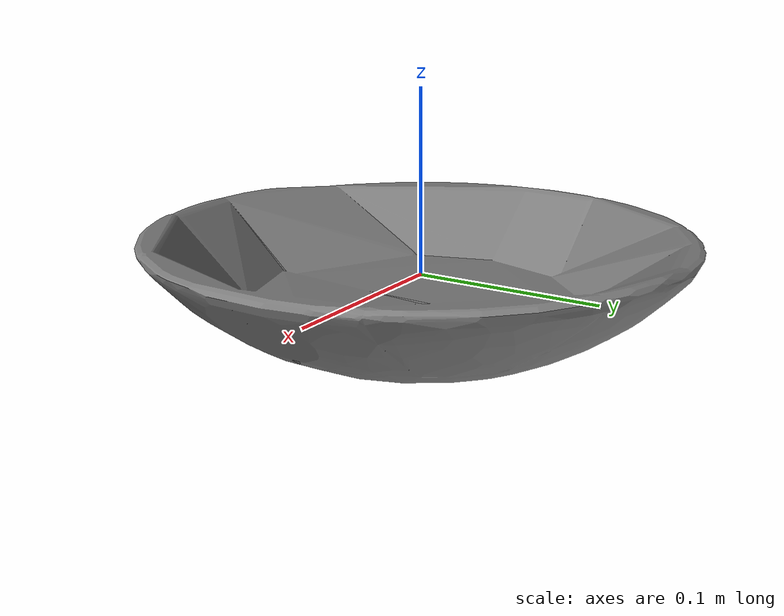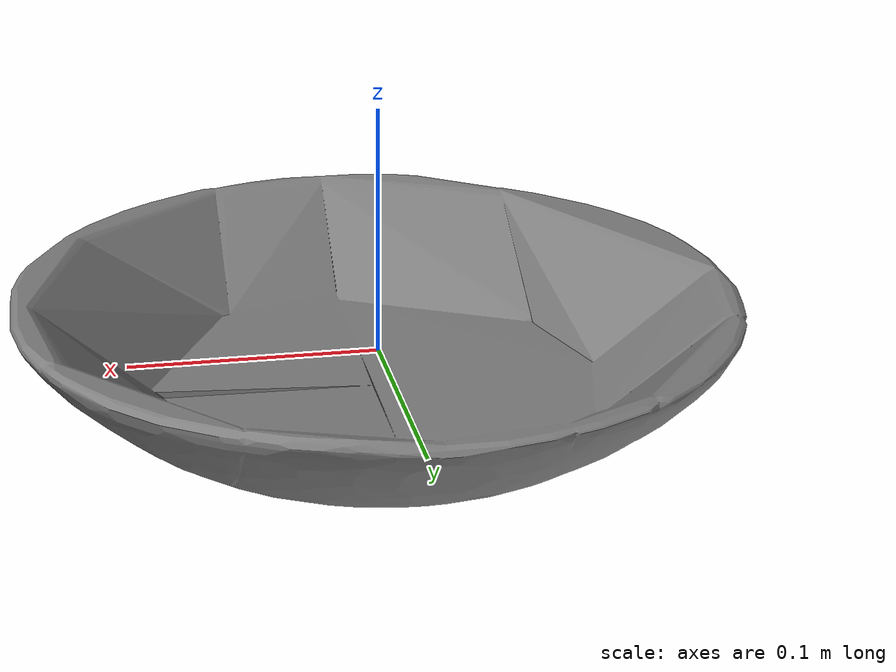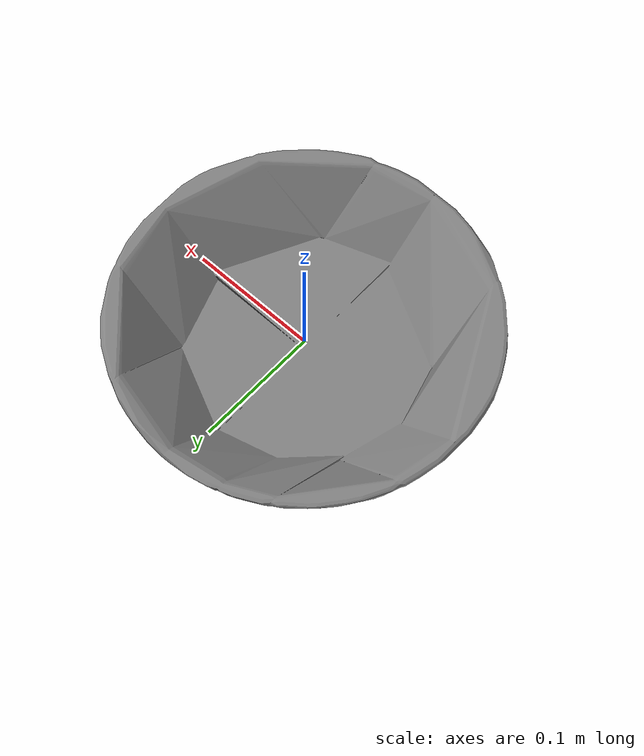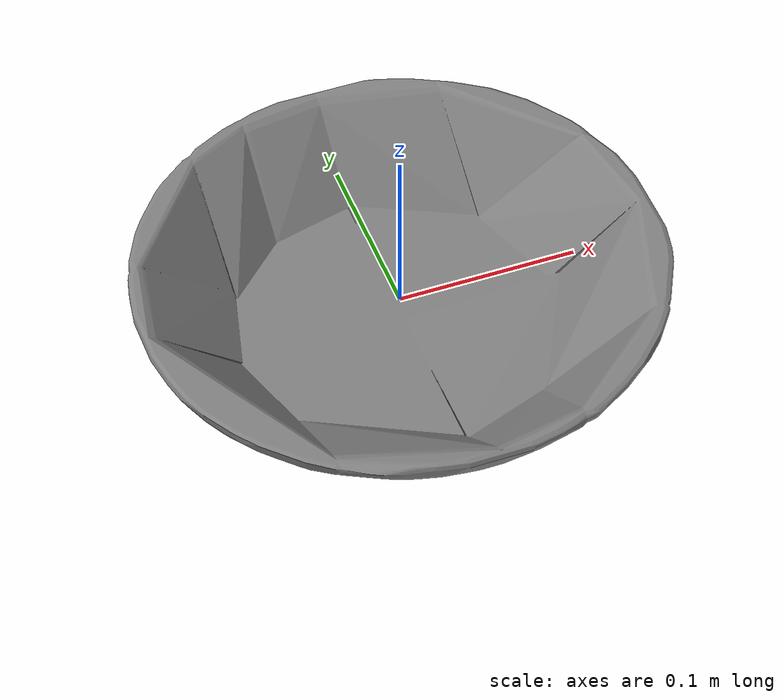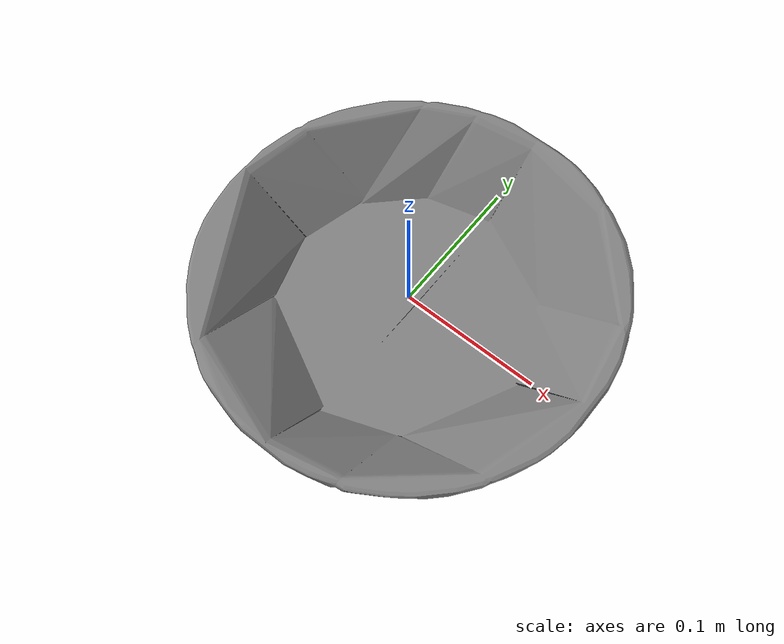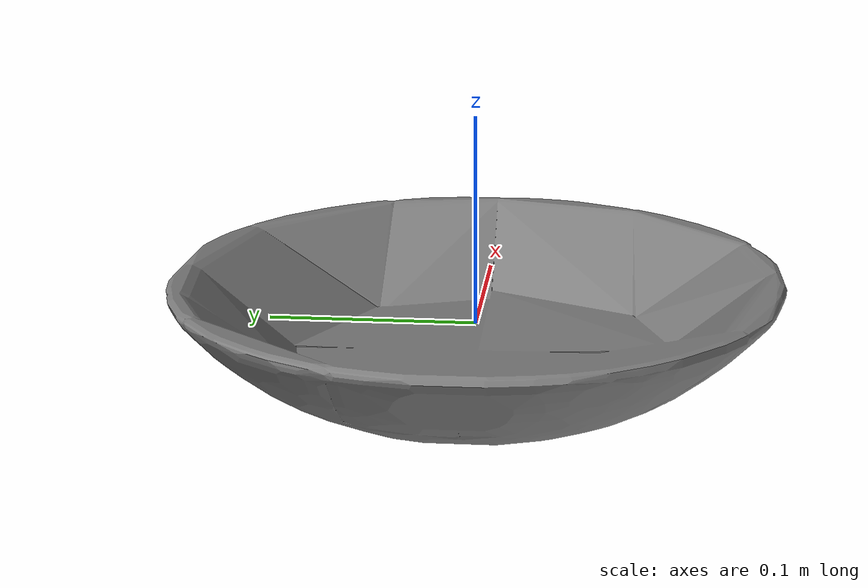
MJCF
<mujoco model="decomposed">
  <compiler angle="radian" meshdir="assets" />
  <default>
    <default class="visual">
      <geom group="2" type="mesh" contype="1" conaffinity="1" />
    </default>
    <default class="collision">
      <geom group="3" type="mesh" />
    </default>
  </default>
  <asset>
    <mesh file="../../meshh/mujoco-Ecoforms_Plant_Plate_S11Turquoise/coacd/decomposed/decomposed.obj" scale="0.15000000596046448 0.15000000596046448 0.15000000596046448" />
  </asset>
  <worldbody>
    <body name="decomposed">
      <joint type="free" />
      <geom mesh="decomposed" class="visual" friction=".1 .5 .1" mass="0" />
      <geom mesh="decomposed" class="collision" friction=".1 .5 .1" mass="0.002" />
    </body>
  </worldbody>
</mujoco>
